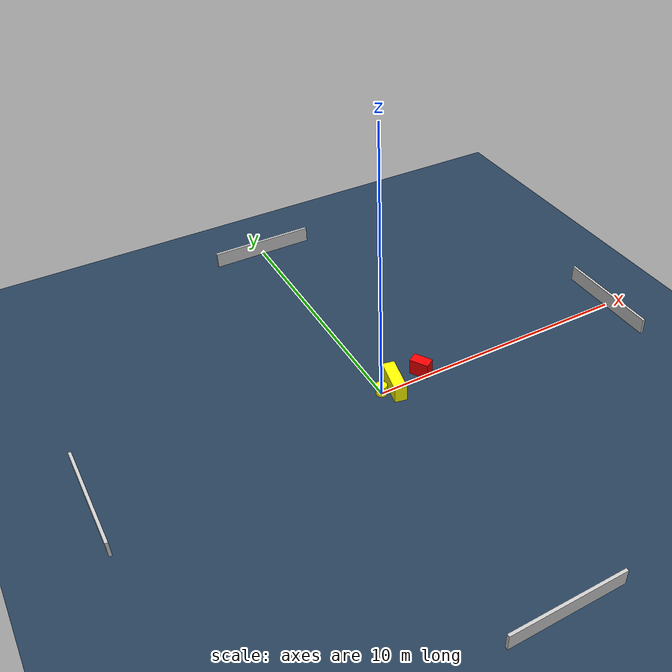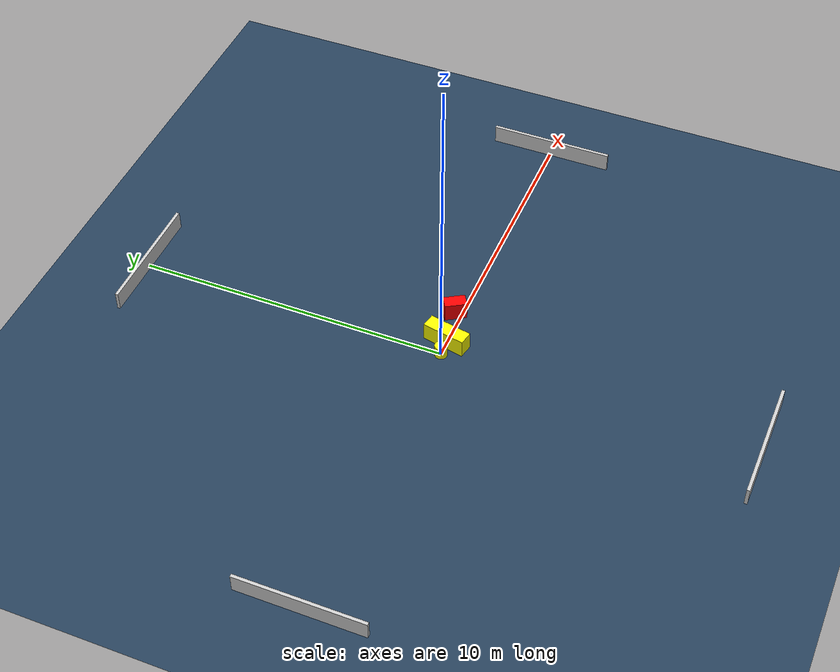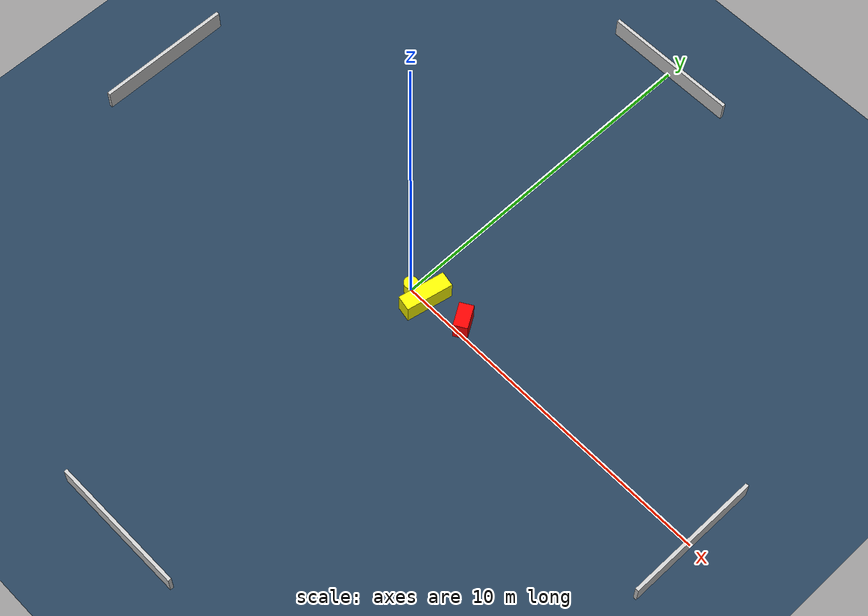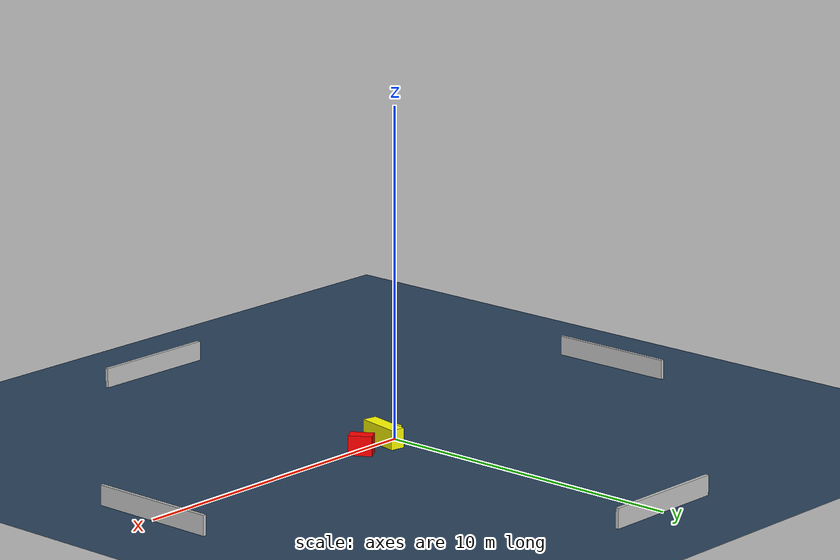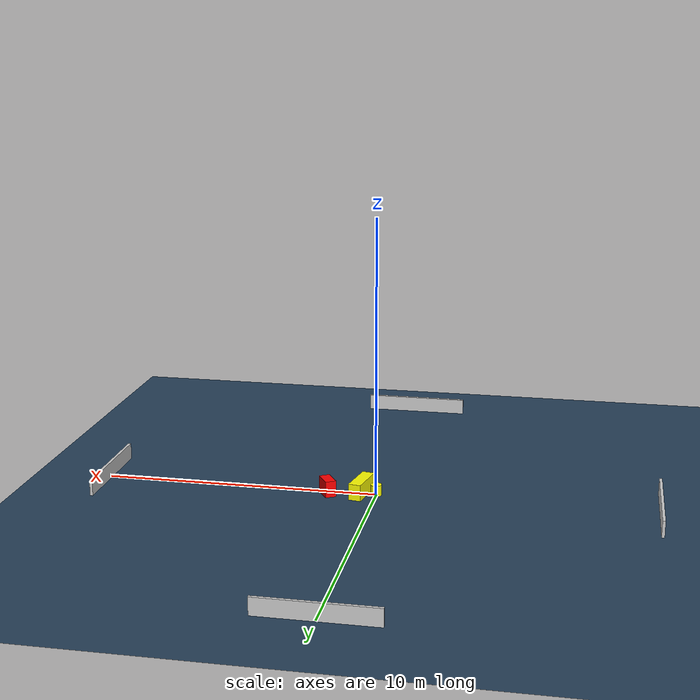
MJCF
<?xml version="1.0" ?>
<mujoco model="generated_environment">
  <option timestep="0.01" integrator="RK4" cone="elliptic"/>
  <default>
    <geom density="1"/>
  </default>
  <asset>
    <texture builtin="gradient" height="3072" name="skybox" rgb1="0.3 0.5 0.7" rgb2="0 0 0" type="skybox" width="512"/>
    <texture builtin="checker" height="300" name="groundplane" rgb1="0.2 0.3 0.4" rgb2="0.1 0.2 0.3" type="2d" width="300"/>
    <material name="groundplane" reflectance="0.2" texrepeat="5 5" texture="groundplane"/>
  </asset>
  <worldbody>
    <light dir="0 0 -1" directional="true" pos="0 0 1.5"/>
    <geom condim="3" friction="0.5 0.005 0.001" material="groundplane" name="floor" pos="0 0 0" size="0 0 0.05" type="plane"/>
    <body name="walls">
      <geom name="wall_1" condim="4" pos="-10.0 0.0 0.3" rgba="0.800000011920929 0.800000011920929 0.800000011920929 1.0" size="0.05 2.0 0.3" type="box"/>
      <geom name="wall_2" condim="4" pos="10.0 0.0 0.3" rgba="0.800000011920929 0.800000011920929 0.800000011920929 1.0" size="0.05 2.0 0.3" type="box"/>
      <geom name="wall_3" condim="4" pos="0.0 -10.0 0.3" rgba="0.800000011920929 0.800000011920929 0.800000011920929 1.0" size="2.0 0.05 0.3" type="box"/>
      <geom name="wall_4" condim="4" pos="0.0 10.0 0.3" rgba="0.800000011920929 0.800000011920929 0.800000011920929 1.0" size="2.0 0.05 0.3" type="box"/>
    </body>
    <body name="robot">
      <joint name="joint_x" type="slide" pos="0 0 0" axis="1 0 0"/>
      <joint name="joint_y" type="slide" pos="0 0 0" axis="0 1 0"/>
      <geom name="robot" type="cylinder" pos="0.0 0.0 0.2" size="0.2 0.2 0.0" mass="5.0" friction="1.0 0.005 0.0001" condim="4" rgba="1.0 1.0 0.0 1.0"/>
    </body>
    <body name="obstacle_1_movable">
      <geom name="obstacle_1_movable" condim="4" pos="0.5229638660609718 0.02081494042559275 0.3" euler="0 0 78.68987790159686" friction="0.0 0.005 0.001" rgba="1.0 1.0 0.0 1.0" size="0.6888847566739624 0.22533930233358251 0.3" type="box" mass="0.1"/>
      <joint type="free"/>
    </body>
    <body name="obstacle_2_static">
      <geom name="obstacle_2_static" condim="4" pos="1.7251485877999704 0.23485841935202437 0.3" euler="0 0 121.55378156479492" friction="0.0 0.005 0.001" rgba="1.0 0.0 0.0 1.0" size="0.35198409167901745 0.2025016363408748 0.3" type="box"/>
    </body>
  </worldbody>
  <actuator>
    <motor name="actuator_x" joint="joint_x" gear="1" ctrlrange="-1 1"/>
    <motor name="actuator_y" joint="joint_y" gear="1" ctrlrange="-1 1"/>
  </actuator>
</mujoco>
